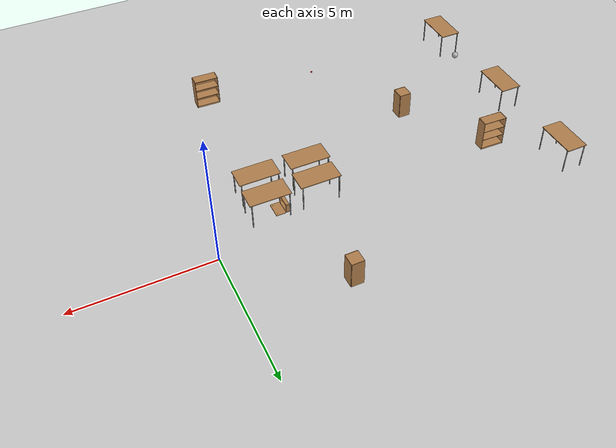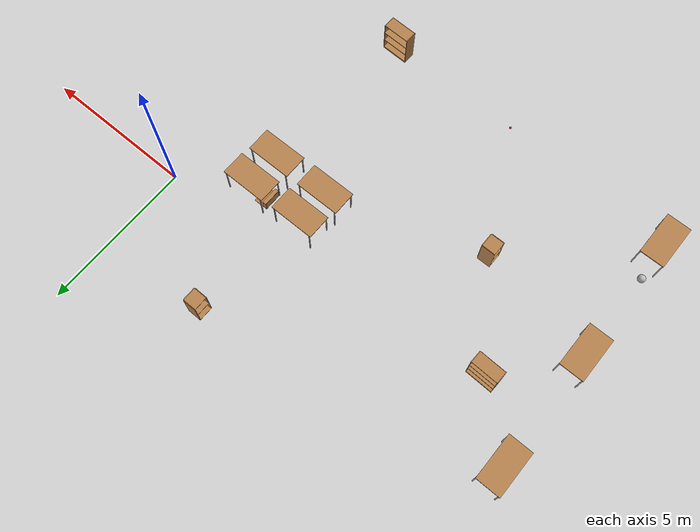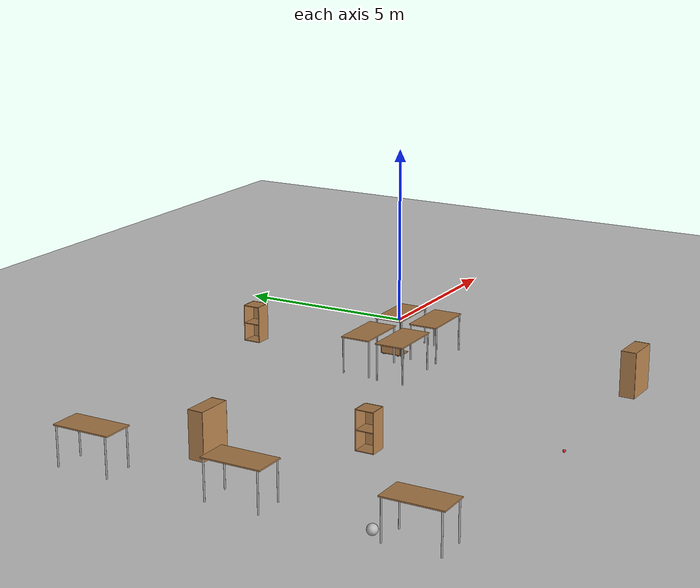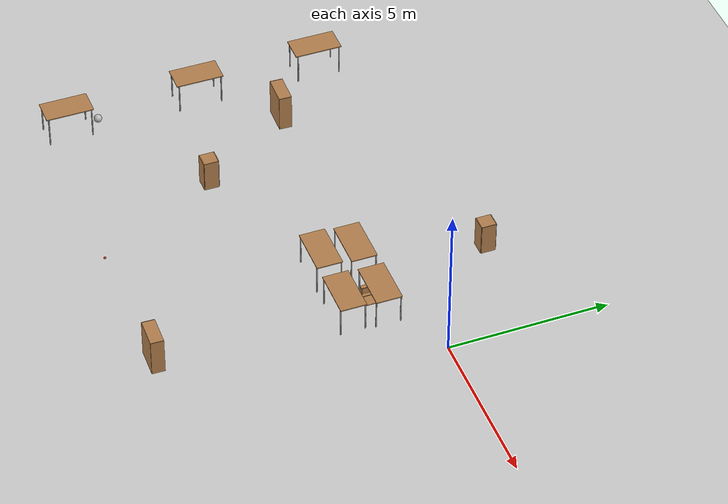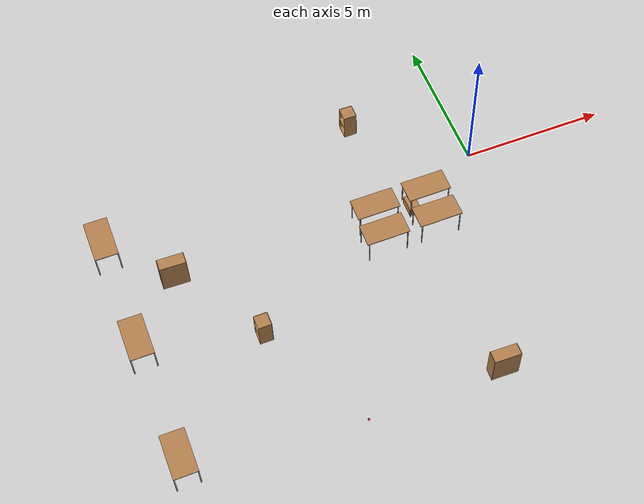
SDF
<sdf version="1.6">
 <world name="default">
  <model name="ground_plane">
   <static>1</static>
   <link name="link">
    <collision name="collision">
     <geometry><plane><normal>0 0 1</normal><size>100 100</size></plane></geometry>
     <surface>
      <contact><collide_bitmask>65535</collide_bitmask></contact>
      <friction><ode><mu>100</mu><mu2>50</mu2></ode></friction>
     </surface>
    </collision>
    <visual name="visual">
     <cast_shadows>0</cast_shadows>
     <geometry><plane><normal>0 0 1</normal><size>100 100</size></plane></geometry>
     <material>
      <script><uri>file://media/materials/scripts/gazebo.material</uri><name>Gazebo/Grey</name></script>
     </material>
    </visual>
   </link>
  </model>
  <model name="table">
   <static>1</static>
   <link name="link">
    <collision name="surface">
     <pose>0 0 1 0 -0 0</pose>
     <geometry><box><size>1.5 0.8 0.03</size></box></geometry>
     <surface><friction><ode><mu>0.6</mu><mu2>0.6</mu2></ode></friction></surface>
    </collision>
    <visual name="visual1">
     <pose>0 0 1 0 -0 0</pose>
     <geometry><box><size>1.5 0.8 0.03</size></box></geometry>
     <material>
      <script><uri>file://media/materials/scripts/gazebo.material</uri><name>Gazebo/Wood</name></script>
     </material>
    </visual>
    <collision name="front_left_leg">
     <pose>0.68 0.38 0.5 0 -0 0</pose>
     <geometry><cylinder><radius>0.02</radius><length>1</length></cylinder></geometry>
    </collision>
    <visual name="front_left_leg">
     <pose>0.68 0.38 0.5 0 -0 0</pose>
     <geometry><cylinder><radius>0.02</radius><length>1</length></cylinder></geometry>
     <material>
      <script><uri>file://media/materials/scripts/gazebo.material</uri><name>Gazebo/Grey</name></script>
     </material>
    </visual>
    <collision name="front_right_leg">
     <pose>0.68 -0.38 0.5 0 -0 0</pose>
     <geometry><cylinder><radius>0.02</radius><length>1</length></cylinder></geometry>
    </collision>
    <visual name="front_right_leg">
     <pose>0.68 -0.38 0.5 0 -0 0</pose>
     <geometry><cylinder><radius>0.02</radius><length>1</length></cylinder></geometry>
     <material>
      <script><uri>file://media/materials/scripts/gazebo.material</uri><name>Gazebo/Grey</name></script>
     </material>
    </visual>
    <collision name="back_right_leg">
     <pose>-0.68 -0.38 0.5 0 -0 0</pose>
     <geometry><cylinder><radius>0.02</radius><length>1</length></cylinder></geometry>
    </collision>
    <visual name="back_right_leg">
     <pose>-0.68 -0.38 0.5 0 -0 0</pose>
     <geometry><cylinder><radius>0.02</radius><length>1</length></cylinder></geometry>
     <material>
      <script><uri>file://media/materials/scripts/gazebo.material</uri><name>Gazebo/Grey</name></script>
     </material>
    </visual>
    <collision name="back_left_leg">
     <pose>-0.68 0.38 0.5 0 -0 0</pose>
     <geometry><cylinder><radius>0.02</radius><length>1</length></cylinder></geometry>
    </collision>
    <visual name="back_left_leg">
     <pose>-0.68 0.38 0.5 0 -0 0</pose>
     <geometry><cylinder><radius>0.02</radius><length>1</length></cylinder></geometry>
     <material>
      <script><uri>file://media/materials/scripts/gazebo.material</uri><name>Gazebo/Grey</name></script>
     </material>
    </visual>
   </link>
   <pose>-4.15428 -2.32364 0 0 -0 0</pose>
  </model>
  <model name="table_0">
   <static>1</static>
   <link name="link">
    <collision name="surface">
     <pose>0 0 1 0 -0 0</pose>
     <geometry><box><size>1.5 0.8 0.03</size></box></geometry>
     <surface><friction><ode><mu>0.6</mu><mu2>0.6</mu2></ode></friction></surface>
    </collision>
    <visual name="visual1">
     <pose>0 0 1 0 -0 0</pose>
     <geometry><box><size>1.5 0.8 0.03</size></box></geometry>
     <material>
      <script><uri>file://media/materials/scripts/gazebo.material</uri><name>Gazebo/Wood</name></script>
     </material>
    </visual>
    <collision name="front_left_leg">
     <pose>0.68 0.38 0.5 0 -0 0</pose>
     <geometry><cylinder><radius>0.02</radius><length>1</length></cylinder></geometry>
    </collision>
    <visual name="front_left_leg">
     <pose>0.68 0.38 0.5 0 -0 0</pose>
     <geometry><cylinder><radius>0.02</radius><length>1</length></cylinder></geometry>
     <material>
      <script><uri>file://media/materials/scripts/gazebo.material</uri><name>Gazebo/Grey</name></script>
     </material>
    </visual>
    <collision name="front_right_leg">
     <pose>0.68 -0.38 0.5 0 -0 0</pose>
     <geometry><cylinder><radius>0.02</radius><length>1</length></cylinder></geometry>
    </collision>
    <visual name="front_right_leg">
     <pose>0.68 -0.38 0.5 0 -0 0</pose>
     <geometry><cylinder><radius>0.02</radius><length>1</length></cylinder></geometry>
     <material>
      <script><uri>file://media/materials/scripts/gazebo.material</uri><name>Gazebo/Grey</name></script>
     </material>
    </visual>
    <collision name="back_right_leg">
     <pose>-0.68 -0.38 0.5 0 -0 0</pose>
     <geometry><cylinder><radius>0.02</radius><length>1</length></cylinder></geometry>
    </collision>
    <visual name="back_right_leg">
     <pose>-0.68 -0.38 0.5 0 -0 0</pose>
     <geometry><cylinder><radius>0.02</radius><length>1</length></cylinder></geometry>
     <material>
      <script><uri>file://media/materials/scripts/gazebo.material</uri><name>Gazebo/Grey</name></script>
     </material>
    </visual>
    <collision name="back_left_leg">
     <pose>-0.68 0.38 0.5 0 -0 0</pose>
     <geometry><cylinder><radius>0.02</radius><length>1</length></cylinder></geometry>
    </collision>
    <visual name="back_left_leg">
     <pose>-0.68 0.38 0.5 0 -0 0</pose>
     <geometry><cylinder><radius>0.02</radius><length>1</length></cylinder></geometry>
     <material>
      <script><uri>file://media/materials/scripts/gazebo.material</uri><name>Gazebo/Grey</name></script>
     </material>
    </visual>
   </link>
   <pose>-2.26331 -2.3073 0 0 -0 0</pose>
  </model>
  <model name="table_1">
   <static>1</static>
   <link name="link">
    <collision name="surface">
     <pose>0 0 1 0 -0 0</pose>
     <geometry><box><size>1.5 0.8 0.03</size></box></geometry>
     <surface><friction><ode><mu>0.6</mu><mu2>0.6</mu2></ode></friction></surface>
    </collision>
    <visual name="visual1">
     <pose>0 0 1 0 -0 0</pose>
     <geometry><box><size>1.5 0.8 0.03</size></box></geometry>
     <material>
      <script><uri>file://media/materials/scripts/gazebo.material</uri><name>Gazebo/Wood</name></script>
     </material>
    </visual>
    <collision name="front_left_leg">
     <pose>0.68 0.38 0.5 0 -0 0</pose>
     <geometry><cylinder><radius>0.02</radius><length>1</length></cylinder></geometry>
    </collision>
    <visual name="front_left_leg">
     <pose>0.68 0.38 0.5 0 -0 0</pose>
     <geometry><cylinder><radius>0.02</radius><length>1</length></cylinder></geometry>
     <material>
      <script><uri>file://media/materials/scripts/gazebo.material</uri><name>Gazebo/Grey</name></script>
     </material>
    </visual>
    <collision name="front_right_leg">
     <pose>0.68 -0.38 0.5 0 -0 0</pose>
     <geometry><cylinder><radius>0.02</radius><length>1</length></cylinder></geometry>
    </collision>
    <visual name="front_right_leg">
     <pose>0.68 -0.38 0.5 0 -0 0</pose>
     <geometry><cylinder><radius>0.02</radius><length>1</length></cylinder></geometry>
     <material>
      <script><uri>file://media/materials/scripts/gazebo.material</uri><name>Gazebo/Grey</name></script>
     </material>
    </visual>
    <collision name="back_right_leg">
     <pose>-0.68 -0.38 0.5 0 -0 0</pose>
     <geometry><cylinder><radius>0.02</radius><length>1</length></cylinder></geometry>
    </collision>
    <visual name="back_right_leg">
     <pose>-0.68 -0.38 0.5 0 -0 0</pose>
     <geometry><cylinder><radius>0.02</radius><length>1</length></cylinder></geometry>
     <material>
      <script><uri>file://media/materials/scripts/gazebo.material</uri><name>Gazebo/Grey</name></script>
     </material>
    </visual>
    <collision name="back_left_leg">
     <pose>-0.68 0.38 0.5 0 -0 0</pose>
     <geometry><cylinder><radius>0.02</radius><length>1</length></cylinder></geometry>
    </collision>
    <visual name="back_left_leg">
     <pose>-0.68 0.38 0.5 0 -0 0</pose>
     <geometry><cylinder><radius>0.02</radius><length>1</length></cylinder></geometry>
     <material>
      <script><uri>file://media/materials/scripts/gazebo.material</uri><name>Gazebo/Grey</name></script>
     </material>
    </visual>
   </link>
   <pose>-4.07153 -1.28187 0 0 -0 0</pose>
  </model>
  <model name="table_2">
   <static>1</static>
   <link name="link">
    <collision name="surface">
     <pose>0 0 1 0 -0 0</pose>
     <geometry><box><size>1.5 0.8 0.03</size></box></geometry>
     <surface><friction><ode><mu>0.6</mu><mu2>0.6</mu2></ode></friction></surface>
    </collision>
    <visual name="visual1">
     <pose>0 0 1 0 -0 0</pose>
     <geometry><box><size>1.5 0.8 0.03</size></box></geometry>
     <material>
      <script><uri>file://media/materials/scripts/gazebo.material</uri><name>Gazebo/Wood</name></script>
     </material>
    </visual>
    <collision name="front_left_leg">
     <pose>0.68 0.38 0.5 0 -0 0</pose>
     <geometry><cylinder><radius>0.02</radius><length>1</length></cylinder></geometry>
    </collision>
    <visual name="front_left_leg">
     <pose>0.68 0.38 0.5 0 -0 0</pose>
     <geometry><cylinder><radius>0.02</radius><length>1</length></cylinder></geometry>
     <material>
      <script><uri>file://media/materials/scripts/gazebo.material</uri><name>Gazebo/Grey</name></script>
     </material>
    </visual>
    <collision name="front_right_leg">
     <pose>0.68 -0.38 0.5 0 -0 0</pose>
     <geometry><cylinder><radius>0.02</radius><length>1</length></cylinder></geometry>
    </collision>
    <visual name="front_right_leg">
     <pose>0.68 -0.38 0.5 0 -0 0</pose>
     <geometry><cylinder><radius>0.02</radius><length>1</length></cylinder></geometry>
     <material>
      <script><uri>file://media/materials/scripts/gazebo.material</uri><name>Gazebo/Grey</name></script>
     </material>
    </visual>
    <collision name="back_right_leg">
     <pose>-0.68 -0.38 0.5 0 -0 0</pose>
     <geometry><cylinder><radius>0.02</radius><length>1</length></cylinder></geometry>
    </collision>
    <visual name="back_right_leg">
     <pose>-0.68 -0.38 0.5 0 -0 0</pose>
     <geometry><cylinder><radius>0.02</radius><length>1</length></cylinder></geometry>
     <material>
      <script><uri>file://media/materials/scripts/gazebo.material</uri><name>Gazebo/Grey</name></script>
     </material>
    </visual>
    <collision name="back_left_leg">
     <pose>-0.68 0.38 0.5 0 -0 0</pose>
     <geometry><cylinder><radius>0.02</radius><length>1</length></cylinder></geometry>
    </collision>
    <visual name="back_left_leg">
     <pose>-0.68 0.38 0.5 0 -0 0</pose>
     <geometry><cylinder><radius>0.02</radius><length>1</length></cylinder></geometry>
     <material>
      <script><uri>file://media/materials/scripts/gazebo.material</uri><name>Gazebo/Grey</name></script>
     </material>
    </visual>
   </link>
   <pose>-2.20724 -1.23414 0 0 -0 0</pose>
  </model>
  <model name="table_13">
   <static>1</static>
   <link name="link">
    <collision name="surface">
     <pose>0 0 1 0 -0 0</pose>
     <geometry><box><size>1.5 0.8 0.03</size></box></geometry>
     <surface><friction><ode><mu>0.6</mu><mu2>0.6</mu2></ode></friction></surface>
    </collision>
    <visual name="visual1">
     <pose>0 0 1 0 -0 0</pose>
     <geometry><box><size>1.5 0.8 0.03</size></box></geometry>
     <material>
      <script><uri>file://media/materials/scripts/gazebo.material</uri><name>Gazebo/Wood</name></script>
     </material>
    </visual>
    <collision name="front_left_leg">
     <pose>0.68 0.38 0.5 0 -0 0</pose>
     <geometry><cylinder><radius>0.02</radius><length>1</length></cylinder></geometry>
    </collision>
    <visual name="front_left_leg">
     <pose>0.68 0.38 0.5 0 -0 0</pose>
     <geometry><cylinder><radius>0.02</radius><length>1</length></cylinder></geometry>
     <material>
      <script><uri>file://media/materials/scripts/gazebo.material</uri><name>Gazebo/Grey</name></script>
     </material>
    </visual>
    <collision name="front_right_leg">
     <pose>0.68 -0.38 0.5 0 -0 0</pose>
     <geometry><cylinder><radius>0.02</radius><length>1</length></cylinder></geometry>
    </collision>
    <visual name="front_right_leg">
     <pose>0.68 -0.38 0.5 0 -0 0</pose>
     <geometry><cylinder><radius>0.02</radius><length>1</length></cylinder></geometry>
     <material>
      <script><uri>file://media/materials/scripts/gazebo.material</uri><name>Gazebo/Grey</name></script>
     </material>
    </visual>
    <collision name="back_right_leg">
     <pose>-0.68 -0.38 0.5 0 -0 0</pose>
     <geometry><cylinder><radius>0.02</radius><length>1</length></cylinder></geometry>
    </collision>
    <visual name="back_right_leg">
     <pose>-0.68 -0.38 0.5 0 -0 0</pose>
     <geometry><cylinder><radius>0.02</radius><length>1</length></cylinder></geometry>
     <material>
      <script><uri>file://media/materials/scripts/gazebo.material</uri><name>Gazebo/Grey</name></script>
     </material>
    </visual>
    <collision name="back_left_leg">
     <pose>-0.68 0.38 0.5 0 -0 0</pose>
     <geometry><cylinder><radius>0.02</radius><length>1</length></cylinder></geometry>
    </collision>
    <visual name="back_left_leg">
     <pose>-0.68 0.38 0.5 0 -0 0</pose>
     <geometry><cylinder><radius>0.02</radius><length>1</length></cylinder></geometry>
     <material>
      <script><uri>file://media/materials/scripts/gazebo.material</uri><name>Gazebo/Grey</name></script>
     </material>
    </visual>
   </link>
   <pose>-12.95 0.751836 0.002095 -0.000489 -1e-06 -1.57229</pose>
  </model>
  <model name="table_13_clone">
   <static>1</static>
   <link name="link">
    <collision name="surface">
     <pose>0 0 1 0 -0 0</pose>
     <geometry><box><size>1.5 0.8 0.03</size></box></geometry>
     <surface><friction><ode><mu>0.6</mu><mu2>0.6</mu2></ode></friction></surface>
    </collision>
    <visual name="visual1">
     <pose>0 0 1 0 -0 0</pose>
     <geometry><box><size>1.5 0.8 0.03</size></box></geometry>
     <material>
      <script><uri>file://media/materials/scripts/gazebo.material</uri><name>Gazebo/Wood</name></script>
     </material>
    </visual>
    <collision name="front_left_leg">
     <pose>0.68 0.38 0.5 0 -0 0</pose>
     <geometry><cylinder><radius>0.02</radius><length>1</length></cylinder></geometry>
    </collision>
    <visual name="front_left_leg">
     <pose>0.68 0.38 0.5 0 -0 0</pose>
     <geometry><cylinder><radius>0.02</radius><length>1</length></cylinder></geometry>
     <material>
      <script><uri>file://media/materials/scripts/gazebo.material</uri><name>Gazebo/Grey</name></script>
     </material>
    </visual>
    <collision name="front_right_leg">
     <pose>0.68 -0.38 0.5 0 -0 0</pose>
     <geometry><cylinder><radius>0.02</radius><length>1</length></cylinder></geometry>
    </collision>
    <visual name="front_right_leg">
     <pose>0.68 -0.38 0.5 0 -0 0</pose>
     <geometry><cylinder><radius>0.02</radius><length>1</length></cylinder></geometry>
     <material>
      <script><uri>file://media/materials/scripts/gazebo.material</uri><name>Gazebo/Grey</name></script>
     </material>
    </visual>
    <collision name="back_right_leg">
     <pose>-0.68 -0.38 0.5 0 -0 0</pose>
     <geometry><cylinder><radius>0.02</radius><length>1</length></cylinder></geometry>
    </collision>
    <visual name="back_right_leg">
     <pose>-0.68 -0.38 0.5 0 -0 0</pose>
     <geometry><cylinder><radius>0.02</radius><length>1</length></cylinder></geometry>
     <material>
      <script><uri>file://media/materials/scripts/gazebo.material</uri><name>Gazebo/Grey</name></script>
     </material>
    </visual>
    <collision name="back_left_leg">
     <pose>-0.68 0.38 0.5 0 -0 0</pose>
     <geometry><cylinder><radius>0.02</radius><length>1</length></cylinder></geometry>
    </collision>
    <visual name="back_left_leg">
     <pose>-0.68 0.38 0.5 0 -0 0</pose>
     <geometry><cylinder><radius>0.02</radius><length>1</length></cylinder></geometry>
     <material>
      <script><uri>file://media/materials/scripts/gazebo.material</uri><name>Gazebo/Grey</name></script>
     </material>
    </visual>
   </link>
   <pose>-12.8952 -3.16682 0.002109 -0.000489 -1e-06 -1.57229</pose>
  </model>
  <model name="table_13_clone_clone">
   <static>1</static>
   <link name="link">
    <collision name="surface">
     <pose>0 0 1 0 -0 0</pose>
     <geometry><box><size>1.5 0.8 0.03</size></box></geometry>
     <surface><friction><ode><mu>0.6</mu><mu2>0.6</mu2></ode></friction></surface>
    </collision>
    <visual name="visual1">
     <pose>0 0 1 0 -0 0</pose>
     <geometry><box><size>1.5 0.8 0.03</size></box></geometry>
     <material>
      <script><uri>file://media/materials/scripts/gazebo.material</uri><name>Gazebo/Wood</name></script>
     </material>
    </visual>
    <collision name="front_left_leg">
     <pose>0.68 0.38 0.5 0 -0 0</pose>
     <geometry><cylinder><radius>0.02</radius><length>1</length></cylinder></geometry>
    </collision>
    <visual name="front_left_leg">
     <pose>0.68 0.38 0.5 0 -0 0</pose>
     <geometry><cylinder><radius>0.02</radius><length>1</length></cylinder></geometry>
     <material>
      <script><uri>file://media/materials/scripts/gazebo.material</uri><name>Gazebo/Grey</name></script>
     </material>
    </visual>
    <collision name="front_right_leg">
     <pose>0.68 -0.38 0.5 0 -0 0</pose>
     <geometry><cylinder><radius>0.02</radius><length>1</length></cylinder></geometry>
    </collision>
    <visual name="front_right_leg">
     <pose>0.68 -0.38 0.5 0 -0 0</pose>
     <geometry><cylinder><radius>0.02</radius><length>1</length></cylinder></geometry>
     <material>
      <script><uri>file://media/materials/scripts/gazebo.material</uri><name>Gazebo/Grey</name></script>
     </material>
    </visual>
    <collision name="back_right_leg">
     <pose>-0.68 -0.38 0.5 0 -0 0</pose>
     <geometry><cylinder><radius>0.02</radius><length>1</length></cylinder></geometry>
    </collision>
    <visual name="back_right_leg">
     <pose>-0.68 -0.38 0.5 0 -0 0</pose>
     <geometry><cylinder><radius>0.02</radius><length>1</length></cylinder></geometry>
     <material>
      <script><uri>file://media/materials/scripts/gazebo.material</uri><name>Gazebo/Grey</name></script>
     </material>
    </visual>
    <collision name="back_left_leg">
     <pose>-0.68 0.38 0.5 0 -0 0</pose>
     <geometry><cylinder><radius>0.02</radius><length>1</length></cylinder></geometry>
    </collision>
    <visual name="back_left_leg">
     <pose>-0.68 0.38 0.5 0 -0 0</pose>
     <geometry><cylinder><radius>0.02</radius><length>1</length></cylinder></geometry>
     <material>
      <script><uri>file://media/materials/scripts/gazebo.material</uri><name>Gazebo/Grey</name></script>
     </material>
    </visual>
   </link>
   <pose>-12.8005 -7.38463 0.002058 -0.000489 -1e-06 -1.57229</pose>
  </model>
  <model name="bookshelf_clone">
   <static>1</static>
   <link name="link">
    <inertial><mass>1</mass></inertial>
    <collision name="back">
     <pose>0 0.005 0.6 0 -0 0</pose>
     <geometry><box><size>0.9 0.01 1.2</size></box></geometry>
    </collision>
    <visual name="visual1">
     <pose>0 0.005 0.6 0 -0 0</pose>
     <geometry><box><size>0.9 0.01 1.2</size></box></geometry>
     <material>
      <script><uri>file://media/materials/scripts/gazebo.material</uri><name>Gazebo/Wood</name></script>
     </material>
    </visual>
    <collision name="left_side">
     <pose>0.45 -0.195 0.6 0 -0 0</pose>
     <geometry><box><size>0.02 0.4 1.2</size></box></geometry>
    </collision>
    <visual name="visual2">
     <pose>0.45 -0.195 0.6 0 -0 0</pose>
     <geometry><box><size>0.02 0.4 1.2</size></box></geometry>
     <material>
      <script><uri>file://media/materials/scripts/gazebo.material</uri><name>Gazebo/Wood</name></script>
     </material>
    </visual>
    <collision name="right_side">
     <pose>-0.45 -0.195 0.6 0 -0 0</pose>
     <geometry><box><size>0.02 0.4 1.2</size></box></geometry>
    </collision>
    <visual name="visual3">
     <pose>-0.45 -0.195 0.6 0 -0 0</pose>
     <geometry><box><size>0.02 0.4 1.2</size></box></geometry>
     <material>
      <script><uri>file://media/materials/scripts/gazebo.material</uri><name>Gazebo/Wood</name></script>
     </material>
    </visual>
    <collision name="bottom">
     <pose>0 -0.195 0.03 0 -0 0</pose>
     <geometry><box><size>0.88 0.4 0.06</size></box></geometry>
    </collision>
    <visual name="visual4">
     <pose>0 -0.195 0.03 0 -0 0</pose>
     <geometry><box><size>0.88 0.4 0.06</size></box></geometry>
     <material>
      <script><uri>file://media/materials/scripts/gazebo.material</uri><name>Gazebo/Wood</name></script>
     </material>
    </visual>
    <collision name="top">
     <pose>0 -0.195 1.19 0 -0 0</pose>
     <geometry><box><size>0.88 0.4 0.02</size></box></geometry>
    </collision>
    <visual name="visual5">
     <pose>0 -0.195 1.19 0 -0 0</pose>
     <geometry><box><size>0.88 0.4 0.02</size></box></geometry>
     <material>
      <script><uri>file://media/materials/scripts/gazebo.material</uri><name>Gazebo/Wood</name></script>
     </material>
    </visual>
    <collision name="low_shelf">
     <pose>0 -0.195 0.43 0 -0 0</pose>
     <geometry><box><size>0.88 0.4 0.02</size></box></geometry>
    </collision>
    <visual name="visual6">
     <pose>0 -0.195 0.43 0 -0 0</pose>
     <geometry><box><size>0.88 0.4 0.02</size></box></geometry>
     <material>
      <script><uri>file://media/materials/scripts/gazebo.material</uri><name>Gazebo/Wood</name></script>
     </material>
    </visual>
    <collision name="high_shelf">
     <pose>0 -0.195 0.8 0 -0 0</pose>
     <geometry><box><size>0.88 0.4 0.02</size></box></geometry>
    </collision>
    <visual name="visual7">
     <pose>0 -0.195 0.8 0 -0 0</pose>
     <geometry><box><size>0.88 0.4 0.02</size></box></geometry>
     <material>
      <script><uri>file://media/materials/scripts/gazebo.material</uri><name>Gazebo/Wood</name></script>
     </material>
    </visual>
   </link>
   <pose>-2.45227 -8.22563 0 0 -0 3.11086</pose>
  </model>
  <model name="cabinet">
   <static>1</static>
   <link name="cabinet_bottom_plate">
    <inertial>
     <pose>0 0 -1 0 -0 0</pose>
     <inertia><ixx>2.05</ixx><ixy>0</ixy><ixz>0</ixz><iyy>2.05</iyy><iyz>0</iyz><izz>2.05</izz></inertia>
     <mass>25</mass>
    </inertial>
    <collision name="cabinet_bottom_plate_geom">
     <pose>0 0 0.01 0 -0 0</pose>
     <geometry><box><size>0.45 0.45 0.02</size></box></geometry>
    </collision>
    <visual name="cabinet_bottom_plate_geom_visual">
     <pose>0 0 0.01 0 -0 0</pose>
     <geometry><box><size>0.45 0.45 0.02</size></box></geometry>
     <material>
      <script><uri>file://media/materials/scripts/gazebo.material</uri><name>Gazebo/Wood</name></script>
     </material>
    </visual>
    <collision name="cabinet_bottom_plate_geom_cabinet_back_plate">
     <pose>0.235 0 0.51 0 -0 0</pose>
     <geometry><box><size>0.02 0.45 1.02</size></box></geometry>
    </collision>
    <visual name="cabinet_bottom_plate_geom_cabinet_back_plate_visual">
     <pose>0.235 0 0.51 0 -0 0</pose>
     <geometry><box><size>0.02 0.45 1.02</size></box></geometry>
     <material>
      <script><uri>file://media/materials/scripts/gazebo.material</uri><name>Gazebo/Wood</name></script>
     </material>
    </visual>
    <collision name="cabinet_bottom_plate_geom_cabinet_left_plate">
     <pose>0 0.235 0.51 0 -0 0</pose>
     <geometry><box><size>0.45 0.02 1.02</size></box></geometry>
    </collision>
    <visual name="cabinet_bottom_plate_geom_cabinet_left_plate_visual">
     <pose>0 0.235 0.51 0 -0 0</pose>
     <geometry><box><size>0.45 0.02 1.02</size></box></geometry>
     <material>
      <script><uri>file://media/materials/scripts/gazebo.material</uri><name>Gazebo/Wood</name></script>
     </material>
    </visual>
    <collision name="cabinet_bottom_plate_geom_cabinet_middle_plate">
     <pose>0 0 0.51 0 -0 0</pose>
     <geometry><box><size>0.45 0.45 0.02</size></box></geometry>
    </collision>
    <visual name="cabinet_bottom_plate_geom_cabinet_middle_plate_visual">
     <pose>0 0 0.51 0 -0 0</pose>
     <geometry><box><size>0.45 0.45 0.02</size></box></geometry>
     <material>
      <script><uri>file://media/materials/scripts/gazebo.material</uri><name>Gazebo/Wood</name></script>
     </material>
    </visual>
    <collision name="cabinet_bottom_plate_geom_cabinet_right_plate">
     <pose>0 -0.235 0.51 0 -0 0</pose>
     <geometry><box><size>0.45 0.02 1.02</size></box></geometry>
    </collision>
    <visual name="cabinet_bottom_plate_geom_cabinet_right_plate_visual">
     <pose>0 -0.235 0.51 0 -0 0</pose>
     <geometry><box><size>0.45 0.02 1.02</size></box></geometry>
     <material>
      <script><uri>file://media/materials/scripts/gazebo.material</uri><name>Gazebo/Wood</name></script>
     </material>
    </visual>
    <collision name="cabinet_bottom_plate_geom_cabinet_top_plate">
     <pose>0 0 1.01 0 -0 0</pose>
     <geometry><box><size>0.45 0.45 0.02</size></box></geometry>
    </collision>
    <visual name="cabinet_bottom_plate_geom_cabinet_top_plate_visual">
     <pose>0 0 1.01 0 -0 0</pose>
     <geometry><box><size>0.45 0.45 0.02</size></box></geometry>
     <material>
      <script><uri>file://media/materials/scripts/gazebo.material</uri><name>Gazebo/Wood</name></script>
     </material>
    </visual>
   </link>
   <pose>-9.0323 -4.08857 0 0 -0 0</pose>
  </model>
  <model name="cricket_ball">
   <link name="link">
    <pose>0 0 0.0375 0 -0 0</pose>
    <inertial>
     <mass>0.1467</mass>
     <inertia>
      <ixx>8.25187e-05</ixx>
      <ixy>0</ixy>
      <ixz>0</ixz>
      <iyy>8.25187e-05</iyy>
      <iyz>0</iyz>
      <izz>8.25187e-05</izz>
     </inertia>
    </inertial>
    <collision name="collision">
     <geometry><sphere><radius>0.0375</radius></sphere></geometry>
     <surface>
      <contact>
       <poissons_ratio>0.347</poissons_ratio>
       <elastic_modulus>8.8e+09</elastic_modulus>
       <ode><kp>100000</kp><kd>100</kd><max_vel>100</max_vel><min_depth>0.001</min_depth></ode>
      </contact>
      <friction>
       <torsional>
        <coefficient>1</coefficient>
        <use_patch_radius>0</use_patch_radius>
        <surface_radius>0.01</surface_radius>
       </torsional>
      </friction>
     </surface>
    </collision>
    <visual name="visual">
     <geometry><sphere><radius>0.0375</radius></sphere></geometry>
     <material>
      <script><uri>file://media/materials/scripts/gazebo.material</uri><name>Gazebo/Red</name></script>
     </material>
    </visual>
    <velocity_decay><linear>0</linear><angular>0.005</angular></velocity_decay>
   </link>
   <pose>-6.99618 -8.05005 -0.001014 0 -0 0</pose>
  </model>
  <model name="frc2016_ball_0">
   <pose>-12.9462 -6.37501 0.127 0 -0 0</pose>
   <link name="link">
    <inertial>
     <mass>0.213</mass>
     <inertia>
      <ixx>0.00322667</ixx>
      <ixy>0</ixy>
      <ixz>0</ixz>
      <iyy>0.00322667</iyy>
      <iyz>0</iyz>
      <izz>0.00322667</izz>
     </inertia>
    </inertial>
    <visual name="visual"><geometry><sphere><radius>0.127</radius></sphere></geometry></visual>
    <collision name="collision">
     <geometry><sphere><radius>0.127</radius></sphere></geometry>
     <surface>
      <bounce><restitution_coefficient>0.15937</restitution_coefficient><threshold>0</threshold></bounce>
      <contact><ode><max_vel>100</max_vel><min_depth>0.001</min_depth></ode></contact>
     </surface>
    </collision>
   </link>
  </model>
  <model name="bookshelf_clone_clone">
   <static>1</static>
   <link name="link">
    <inertial><mass>1</mass></inertial>
    <collision name="back">
     <pose>0 0.005 0.6 0 -0 0</pose>
     <geometry><box><size>0.9 0.01 1.2</size></box></geometry>
    </collision>
    <visual name="visual1">
     <pose>0 0.005 0.6 0 -0 0</pose>
     <geometry><box><size>0.9 0.01 1.2</size></box></geometry>
     <material>
      <script><uri>file://media/materials/scripts/gazebo.material</uri><name>Gazebo/Wood</name></script>
     </material>
    </visual>
    <collision name="left_side">
     <pose>0.45 -0.195 0.6 0 -0 0</pose>
     <geometry><box><size>0.02 0.4 1.2</size></box></geometry>
    </collision>
    <visual name="visual2">
     <pose>0.45 -0.195 0.6 0 -0 0</pose>
     <geometry><box><size>0.02 0.4 1.2</size></box></geometry>
     <material>
      <script><uri>file://media/materials/scripts/gazebo.material</uri><name>Gazebo/Wood</name></script>
     </material>
    </visual>
    <collision name="right_side">
     <pose>-0.45 -0.195 0.6 0 -0 0</pose>
     <geometry><box><size>0.02 0.4 1.2</size></box></geometry>
    </collision>
    <visual name="visual3">
     <pose>-0.45 -0.195 0.6 0 -0 0</pose>
     <geometry><box><size>0.02 0.4 1.2</size></box></geometry>
     <material>
      <script><uri>file://media/materials/scripts/gazebo.material</uri><name>Gazebo/Wood</name></script>
     </material>
    </visual>
    <collision name="bottom">
     <pose>0 -0.195 0.03 0 -0 0</pose>
     <geometry><box><size>0.88 0.4 0.06</size></box></geometry>
    </collision>
    <visual name="visual4">
     <pose>0 -0.195 0.03 0 -0 0</pose>
     <geometry><box><size>0.88 0.4 0.06</size></box></geometry>
     <material>
      <script><uri>file://media/materials/scripts/gazebo.material</uri><name>Gazebo/Wood</name></script>
     </material>
    </visual>
    <collision name="top">
     <pose>0 -0.195 1.19 0 -0 0</pose>
     <geometry><box><size>0.88 0.4 0.02</size></box></geometry>
    </collision>
    <visual name="visual5">
     <pose>0 -0.195 1.19 0 -0 0</pose>
     <geometry><box><size>0.88 0.4 0.02</size></box></geometry>
     <material>
      <script><uri>file://media/materials/scripts/gazebo.material</uri><name>Gazebo/Wood</name></script>
     </material>
    </visual>
    <collision name="low_shelf">
     <pose>0 -0.195 0.43 0 -0 0</pose>
     <geometry><box><size>0.88 0.4 0.02</size></box></geometry>
    </collision>
    <visual name="visual6">
     <pose>0 -0.195 0.43 0 -0 0</pose>
     <geometry><box><size>0.88 0.4 0.02</size></box></geometry>
     <material>
      <script><uri>file://media/materials/scripts/gazebo.material</uri><name>Gazebo/Wood</name></script>
     </material>
    </visual>
    <collision name="high_shelf">
     <pose>0 -0.195 0.8 0 -0 0</pose>
     <geometry><box><size>0.88 0.4 0.02</size></box></geometry>
    </collision>
    <visual name="visual7">
     <pose>0 -0.195 0.8 0 -0 0</pose>
     <geometry><box><size>0.88 0.4 0.02</size></box></geometry>
     <material>
      <script><uri>file://media/materials/scripts/gazebo.material</uri><name>Gazebo/Wood</name></script>
     </material>
    </visual>
   </link>
   <pose>-11.0771 -1.24225 0 0 -0 3.11086</pose>
  </model>
  <model name="cabinet_2">
   <static>1</static>
   <link name="cabinet_bottom_plate">
    <inertial>
     <pose>0 0 -1 0 -0 0</pose>
     <inertia><ixx>2.05</ixx><ixy>0</ixy><ixz>0</ixz><iyy>2.05</iyy><iyz>0</iyz><izz>2.05</izz></inertia>
     <mass>25</mass>
    </inertial>
    <collision name="cabinet_bottom_plate_geom">
     <pose>0 0 0.01 0 -0 0</pose>
     <geometry><box><size>0.45 0.45 0.02</size></box></geometry>
    </collision>
    <visual name="cabinet_bottom_plate_geom_visual">
     <pose>0 0 0.01 0 -0 0</pose>
     <geometry><box><size>0.45 0.45 0.02</size></box></geometry>
     <material>
      <script><uri>file://media/materials/scripts/gazebo.material</uri><name>Gazebo/Wood</name></script>
     </material>
    </visual>
    <collision name="cabinet_bottom_plate_geom_cabinet_back_plate">
     <pose>0.235 0 0.51 0 -0 0</pose>
     <geometry><box><size>0.02 0.45 1.02</size></box></geometry>
    </collision>
    <visual name="cabinet_bottom_plate_geom_cabinet_back_plate_visual">
     <pose>0.235 0 0.51 0 -0 0</pose>
     <geometry><box><size>0.02 0.45 1.02</size></box></geometry>
     <material>
      <script><uri>file://media/materials/scripts/gazebo.material</uri><name>Gazebo/Wood</name></script>
     </material>
    </visual>
    <collision name="cabinet_bottom_plate_geom_cabinet_left_plate">
     <pose>0 0.235 0.51 0 -0 0</pose>
     <geometry><box><size>0.45 0.02 1.02</size></box></geometry>
    </collision>
    <visual name="cabinet_bottom_plate_geom_cabinet_left_plate_visual">
     <pose>0 0.235 0.51 0 -0 0</pose>
     <geometry><box><size>0.45 0.02 1.02</size></box></geometry>
     <material>
      <script><uri>file://media/materials/scripts/gazebo.material</uri><name>Gazebo/Wood</name></script>
     </material>
    </visual>
    <collision name="cabinet_bottom_plate_geom_cabinet_middle_plate">
     <pose>0 0 0.51 0 -0 0</pose>
     <geometry><box><size>0.45 0.45 0.02</size></box></geometry>
    </collision>
    <visual name="cabinet_bottom_plate_geom_cabinet_middle_plate_visual">
     <pose>0 0 0.51 0 -0 0</pose>
     <geometry><box><size>0.45 0.45 0.02</size></box></geometry>
     <material>
      <script><uri>file://media/materials/scripts/gazebo.material</uri><name>Gazebo/Wood</name></script>
     </material>
    </visual>
    <collision name="cabinet_bottom_plate_geom_cabinet_right_plate">
     <pose>0 -0.235 0.51 0 -0 0</pose>
     <geometry><box><size>0.45 0.02 1.02</size></box></geometry>
    </collision>
    <visual name="cabinet_bottom_plate_geom_cabinet_right_plate_visual">
     <pose>0 -0.235 0.51 0 -0 0</pose>
     <geometry><box><size>0.45 0.02 1.02</size></box></geometry>
     <material>
      <script><uri>file://media/materials/scripts/gazebo.material</uri><name>Gazebo/Wood</name></script>
     </material>
    </visual>
    <collision name="cabinet_bottom_plate_geom_cabinet_top_plate">
     <pose>0 0 1.01 0 -0 0</pose>
     <geometry><box><size>0.45 0.45 0.02</size></box></geometry>
    </collision>
    <visual name="cabinet_bottom_plate_geom_cabinet_top_plate_visual">
     <pose>0 0 1.01 0 -0 0</pose>
     <geometry><box><size>0.45 0.45 0.02</size></box></geometry>
     <material>
      <script><uri>file://media/materials/scripts/gazebo.material</uri><name>Gazebo/Wood</name></script>
     </material>
    </visual>
   </link>
   <pose>-3.53502 2.62136 0 0 -0 0</pose>
  </model>
  <model name="wooden_case_clone">
   <link name="base">
    <pose>0 0 0.024 0 -0 0</pose>
    <inertial>
     <pose>-0.022184 0 0.171592 0 -0 0</pose>
     <mass>3.96264</mass>
     <inertia>
      <ixx>0.213536</ixx>
      <ixy>0</ixy>
      <ixz>0.000779377</ixz>
      <iyy>0.0708943</iyy>
      <iyz>0</iyz>
      <izz>0.154604</izz>
     </inertia>
    </inertial>
    <collision name="collision_back">
     <pose>-0.053975 0 0.1778 0 -0 0</pose>
     <geometry><box><size>0.01905 0.5461 0.3175</size></box></geometry>
     <surface>
      <contact>
       <poissons_ratio>0.347</poissons_ratio>
       <elastic_modulus>8.8e+09</elastic_modulus>
       <ode><kp>100000</kp><kd>100</kd><max_vel>100</max_vel><min_depth>0.001</min_depth></ode>
      </contact>
      <friction>
       <torsional>
        <coefficient>1</coefficient>
        <use_patch_radius>0</use_patch_radius>
        <surface_radius>0.01</surface_radius>
       </torsional>
      </friction>
     </surface>
    </collision>
    <visual name="visual_back">
     <pose>-0.053975 0 0.1778 0 -0 0</pose>
     <geometry><box><size>0.01905 0.5461 0.3175</size></box></geometry>
     <material>
      <script><uri>file://media/materials/scripts/gazebo.material</uri><name>Gazebo/Wood</name></script>
     </material>
    </visual>
    <collision name="collision_bottom">
     <pose>0 0 0.009525 0 -0 0</pose>
     <geometry><box><size>0.127 0.5842 0.01905</size></box></geometry>
     <surface>
      <contact>
       <poissons_ratio>0.347</poissons_ratio>
       <elastic_modulus>8.8e+09</elastic_modulus>
       <ode><kp>100000</kp><kd>100</kd><max_vel>100</max_vel><min_depth>0.001</min_depth></ode>
      </contact>
      <friction>
       <torsional>
        <coefficient>1</coefficient>
        <use_patch_radius>0</use_patch_radius>
        <surface_radius>0.01</surface_radius>
       </torsional>
      </friction>
     </surface>
    </collision>
    <visual name="visual_bottom">
     <pose>0 0 0.009525 0 -0 0</pose>
     <geometry><box><size>0.127 0.5842 0.01905</size></box></geometry>
     <material>
      <script><uri>file://media/materials/scripts/gazebo.material</uri><name>Gazebo/Wood</name></script>
     </material>
    </visual>
    <collision name="collision_top">
     <pose>0 0 0.346075 0 -0 0</pose>
     <geometry><box><size>0.127 0.5842 0.01905</size></box></geometry>
     <surface>
      <contact>
       <poissons_ratio>0.347</poissons_ratio>
       <elastic_modulus>8.8e+09</elastic_modulus>
       <ode><kp>100000</kp><kd>100</kd><max_vel>100</max_vel><min_depth>0.001</min_depth></ode>
      </contact>
      <friction>
       <torsional>
        <coefficient>1</coefficient>
        <use_patch_radius>0</use_patch_radius>
        <surface_radius>0.01</surface_radius>
       </torsional>
      </friction>
     </surface>
    </collision>
    <visual name="visual_top">
     <pose>0 0 0.346075 0 -0 0</pose>
     <geometry><box><size>0.127 0.5842 0.01905</size></box></geometry>
     <material>
      <script><uri>file://media/materials/scripts/gazebo.material</uri><name>Gazebo/Wood</name></script>
     </material>
    </visual>
    <collision name="collision_left">
     <pose>0 -0.282575 0.1778 0 -0 0</pose>
     <geometry><box><size>0.127 0.01905 0.3175</size></box></geometry>
     <surface>
      <contact>
       <poissons_ratio>0.347</poissons_ratio>
       <elastic_modulus>8.8e+09</elastic_modulus>
       <ode><kp>100000</kp><kd>100</kd><max_vel>100</max_vel><min_depth>0.001</min_depth></ode>
      </contact>
      <friction>
       <torsional>
        <coefficient>1</coefficient>
        <use_patch_radius>0</use_patch_radius>
        <surface_radius>0.01</surface_radius>
       </torsional>
      </friction>
     </surface>
    </collision>
    <visual name="visual_left">
     <pose>0 -0.282575 0.1778 0 -0 0</pose>
     <geometry><box><size>0.127 0.01905 0.3175</size></box></geometry>
     <material>
      <script><uri>file://media/materials/scripts/gazebo.material</uri><name>Gazebo/Wood</name></script>
     </material>
    </visual>
    <collision name="collision_right">
     <pose>0 0.282575 0.1778 0 -0 0</pose>
     <geometry><box><size>0.127 0.01905 0.3175</size></box></geometry>
     <surface>
      <contact>
       <poissons_ratio>0.347</poissons_ratio>
       <elastic_modulus>8.8e+09</elastic_modulus>
       <ode><kp>100000</kp><kd>100</kd><max_vel>100</max_vel><min_depth>0.001</min_depth></ode>
      </contact>
      <friction>
       <torsional>
        <coefficient>1</coefficient>
        <use_patch_radius>0</use_patch_radius>
        <surface_radius>0.01</surface_radius>
       </torsional>
      </friction>
     </surface>
    </collision>
    <visual name="visual_right">
     <pose>0 0.282575 0.1778 0 -0 0</pose>
     <geometry><box><size>0.127 0.01905 0.3175</size></box></geometry>
     <material>
      <script><uri>file://media/materials/scripts/gazebo.material</uri><name>Gazebo/Wood</name></script>
     </material>
    </visual>
    <collision name="collision_block_left">
     <pose>0.0095 -0.2151 -0.012 0 -0 0</pose>
     <geometry><box><size>0.108 0.05 0.024</size></box></geometry>
     <surface>
      <contact>
       <poissons_ratio>0.347</poissons_ratio>
       <elastic_modulus>8.8e+09</elastic_modulus>
       <ode><kp>100000</kp><kd>100</kd><max_vel>100</max_vel><min_depth>0.001</min_depth></ode>
      </contact>
      <friction>
       <torsional>
        <coefficient>1</coefficient>
        <use_patch_radius>0</use_patch_radius>
        <surface_radius>0.01</surface_radius>
       </torsional>
      </friction>
     </surface>
    </collision>
    <visual name="visual_block_left">
     <pose>0.0095 -0.2151 -0.012 0 -0 0</pose>
     <geometry><box><size>0.108 0.05 0.024</size></box></geometry>
     <material>
      <script><uri>file://media/materials/scripts/gazebo.material</uri><name>Gazebo/Wood</name></script>
     </material>
    </visual>
    <collision name="collision_block_right">
     <pose>0.0095 0.2151 -0.012 0 -0 0</pose>
     <geometry><box><size>0.108 0.05 0.024</size></box></geometry>
     <surface>
      <contact>
       <poissons_ratio>0.347</poissons_ratio>
       <elastic_modulus>8.8e+09</elastic_modulus>
       <ode><kp>100000</kp><kd>100</kd><max_vel>100</max_vel><min_depth>0.001</min_depth></ode>
      </contact>
      <friction>
       <torsional>
        <coefficient>1</coefficient>
        <use_patch_radius>0</use_patch_radius>
        <surface_radius>0.01</surface_radius>
       </torsional>
      </friction>
     </surface>
    </collision>
    <visual name="visual_block_right">
     <pose>0.0095 0.2151 -0.012 0 -0 0</pose>
     <geometry><box><size>0.108 0.05 0.024</size></box></geometry>
     <material>
      <script><uri>file://media/materials/scripts/gazebo.material</uri><name>Gazebo/Wood</name></script>
     </material>
    </visual>
   </link>
   <link name="lid">
    <pose>0.243775 0 0.009525 0 -0 0</pose>
    <inertial>
     <mass>1.97874</mass>
     <inertia>
      <ixx>0.0563367</ixx>
      <ixy>0</ixy>
      <ixz>0</ixz>
      <iyy>0.020911</iyy>
      <iyz>0</iyz>
      <izz>0.0771281</izz>
     </inertia>
    </inertial>
    <collision name="collision">
     <geometry><box><size>0.3556 0.5842 0.01905</size></box></geometry>
     <surface>
      <contact>
       <poissons_ratio>0.347</poissons_ratio>
       <elastic_modulus>8.8e+09</elastic_modulus>
       <ode><kp>100000</kp><kd>100</kd><max_vel>100</max_vel><min_depth>0.001</min_depth></ode>
      </contact>
      <friction>
       <torsional>
        <coefficient>1</coefficient>
        <use_patch_radius>0</use_patch_radius>
        <surface_radius>0.01</surface_radius>
       </torsional>
      </friction>
     </surface>
    </collision>
    <visual name="visual">
     <geometry><box><size>0.3556 0.5842 0.01905</size></box></geometry>
     <material>
      <script><uri>file://media/materials/scripts/gazebo.material</uri><name>Gazebo/Wood</name></script>
     </material>
    </visual>
    <visual name="tee_nut_1">
     <pose>0.122 -0.216 0 0 -0 0</pose>
     <geometry><cylinder><radius>0.00635</radius><length>0.0192405</length></cylinder></geometry>
     <material>
      <script><uri>file://media/materials/scripts/gazebo.material</uri><name>Gazebo/Grey</name></script>
     </material>
    </visual>
    <visual name="tee_nut_2">
     <pose>0.122 -0.088 0 0 -0 0</pose>
     <geometry><cylinder><radius>0.00635</radius><length>0.0192405</length></cylinder></geometry>
     <material>
      <script><uri>file://media/materials/scripts/gazebo.material</uri><name>Gazebo/Grey</name></script>
     </material>
    </visual>
    <visual name="tee_nut_3">
     <pose>0.122 0.088 0 0 -0 0</pose>
     <geometry><cylinder><radius>0.00635</radius><length>0.0192405</length></cylinder></geometry>
     <material>
      <script><uri>file://media/materials/scripts/gazebo.material</uri><name>Gazebo/Grey</name></script>
     </material>
    </visual>
    <visual name="tee_nut_4">
     <pose>0.122 0.216 0 0 -0 0</pose>
     <geometry><cylinder><radius>0.00635</radius><length>0.0192405</length></cylinder></geometry>
     <material>
      <script><uri>file://media/materials/scripts/gazebo.material</uri><name>Gazebo/Grey</name></script>
     </material>
    </visual>
   </link>
   <joint name="lid_hinge" type="revolute">
    <pose>-0.1778 0 0.01905 0 -0 0</pose>
    <parent>base</parent>
    <child>lid</child>
    <axis>
     <xyz>0 1 0</xyz>
     <limit><upper>0.523599</upper><lower>-1.5708</lower></limit>
     <use_parent_model_frame>0</use_parent_model_frame>
     <dynamics><spring_reference>0</spring_reference><spring_stiffness>0</spring_stiffness></dynamics>
    </axis>
   </joint>
   <pose>-2.84384 -1.29137 -0.001057 0 -0.000428 0.002901</pose>
  </model>
 </world>
</sdf>
